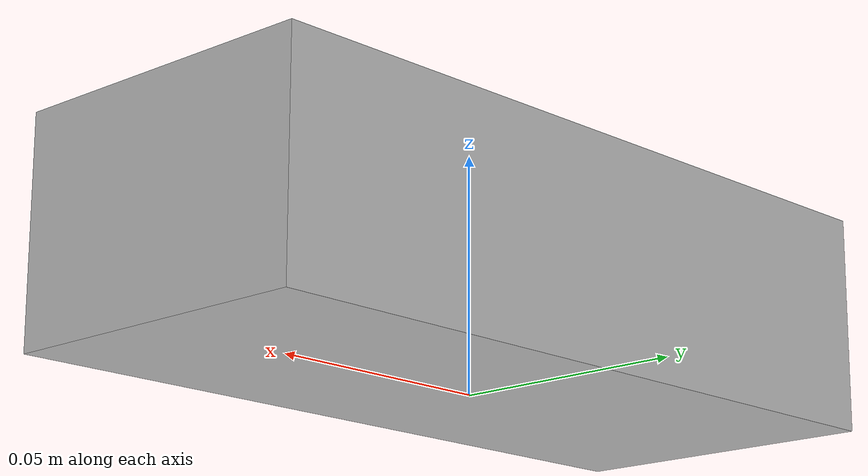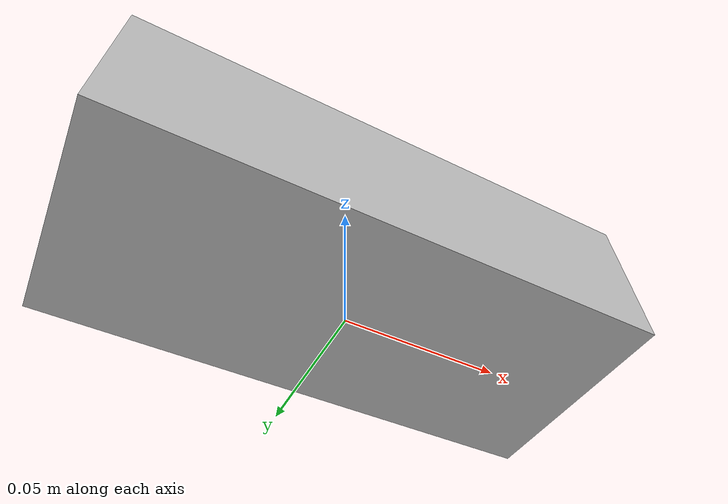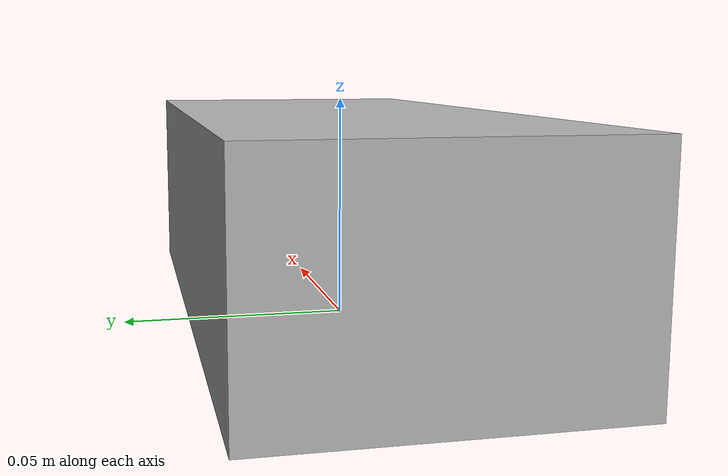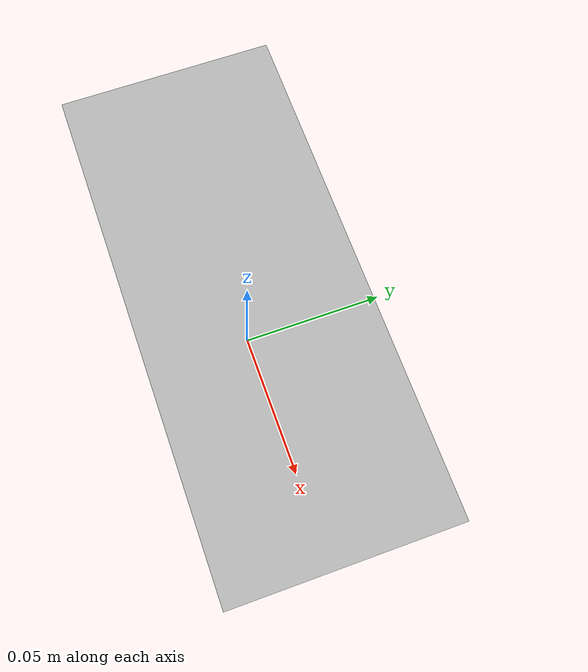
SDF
<?xml version="1.0" ?>
<sdf version="1.4">
  <model name="utl5_medium">
    <static>true</static>
    <link name="link">
      <inertial>
        <mass>0.2</mass>
      </inertial>
      <collision name="collision">
        <pose>0.0 0.0 0.0 0 0.0 0.0</pose>
        <geometry>
          <mesh>
            <uri>model://utl5_medium/meshes/utl5_medium.dae</uri>
          </mesh>
        </geometry>
      </collision>
      <visual name="visual">
        <pose>0.0 0.0 0.0 0 0.0 0.0</pose>
        <geometry>
          <mesh>
            <uri>model://utl5_medium/meshes/utl5_medium.dae</uri>
          </mesh>
        </geometry>
      </visual>
    </link>
  </model>
</sdf>
